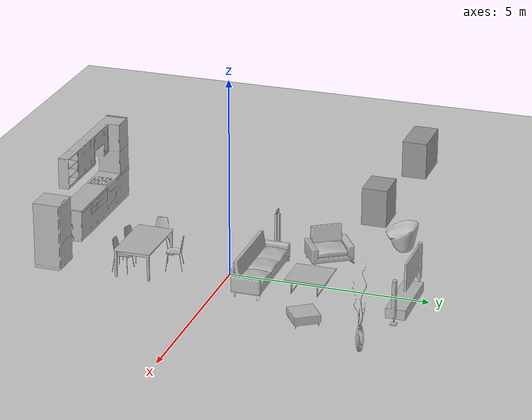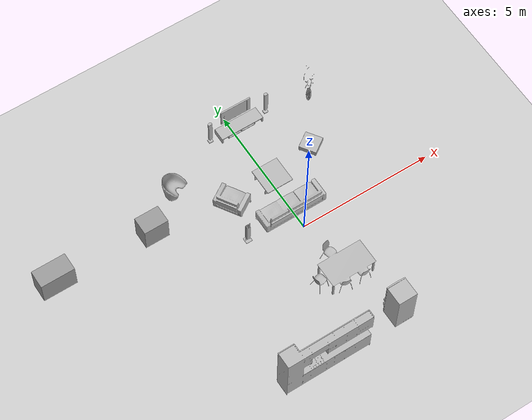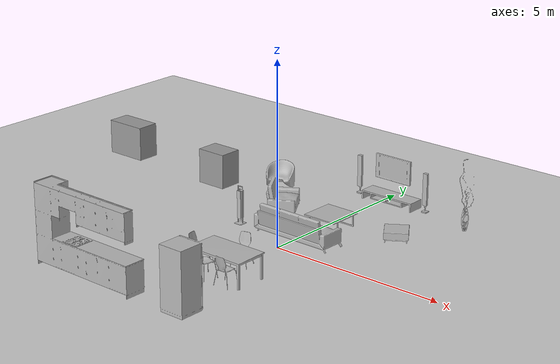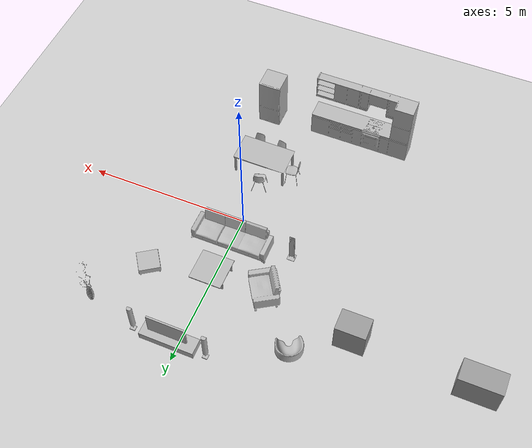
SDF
<sdf version="1.6">
 <world name="default">
  <model name="ground_plane">
   <static>1</static>
   <link name="link">
    <collision name="collision">
     <geometry><plane><normal>0 0 1</normal><size>100 100</size></plane></geometry>
     <surface><friction><ode><mu>100</mu><mu2>50</mu2></ode></friction></surface>
    </collision>
    <visual name="visual">
     <cast_shadows>0</cast_shadows>
     <geometry><plane><normal>0 0 1</normal><size>100 100</size></plane></geometry>
     <material>
      <script><uri>file://media/materials/scripts/gazebo.material</uri><name>Gazebo/Grey</name></script>
     </material>
    </visual>
   </link>
  </model>
  <model name="livingroom">
   <static>1</static>
   <link name="body">
    <visual name="visual">
     <geometry><mesh><uri>model://blueprint_exploration/worlds/models/livingroom2.dae</uri></mesh></geometry>
    </visual>
    <collision name="collision">
     <geometry><mesh><uri>model://blueprint_exploration/worlds/models/livingroom2.dae</uri></mesh></geometry>
    </collision>
   </link>
   <pose>-0.006086 2.03041 0 0 -0 3.14</pose>
  </model>
  <model name="kitchen">
   <static>1</static>
   <link name="body">
    <visual name="visual">
     <geometry><mesh><uri>model://blueprint_exploration/worlds/models/kitchen.dae</uri></mesh></geometry>
    </visual>
    <collision name="collision">
     <geometry><mesh><uri>model://blueprint_exploration/worlds/models/kitchen.dae</uri></mesh></geometry>
    </collision>
   </link>
   <pose>-0.599002 -5.64133 0 0 -0 3.14</pose>
  </model>
  <model name="unit_box_clone_0">
   <pose>-4.38273 2.52129 0.5 0 -0 4.5e-05</pose>
   <link name="link">
    <inertial>
     <mass>1</mass>
     <inertia>
      <ixx>0.166667</ixx>
      <ixy>0</ixy>
      <ixz>0</ixz>
      <iyy>0.166667</iyy>
      <iyz>0</iyz>
      <izz>0.166667</izz>
     </inertia>
    </inertial>
    <collision name="collision"><geometry><box><size>0.898717 0.661254 1</size></box></geometry></collision>
    <visual name="visual">
     <geometry><box><size>0.898717 0.661254 1</size></box></geometry>
     <material>
      <script><name>Gazebo/Grey</name><uri>file://media/materials/scripts/gazebo.material</uri></script>
     </material>
    </visual>
   </link>
  </model>
  <model name="unit_box_clone_0_clone">
   <pose>-8.01093 2.66069 0.5 0 0 -3e-06</pose>
   <link name="link">
    <inertial>
     <mass>1</mass>
     <inertia>
      <ixx>0.166667</ixx>
      <ixy>0</ixy>
      <ixz>0</ixz>
      <iyy>0.166667</iyy>
      <iyz>0</iyz>
      <izz>0.166667</izz>
     </inertia>
    </inertial>
    <collision name="collision"><geometry><box><size>1.24481 0.661254 1</size></box></geometry></collision>
    <visual name="visual">
     <geometry><box><size>1.24481 0.661254 1</size></box></geometry>
     <material>
      <script><name>Gazebo/Grey</name><uri>file://media/materials/scripts/gazebo.material</uri></script>
     </material>
    </visual>
   </link>
  </model>
 </world>
</sdf>
